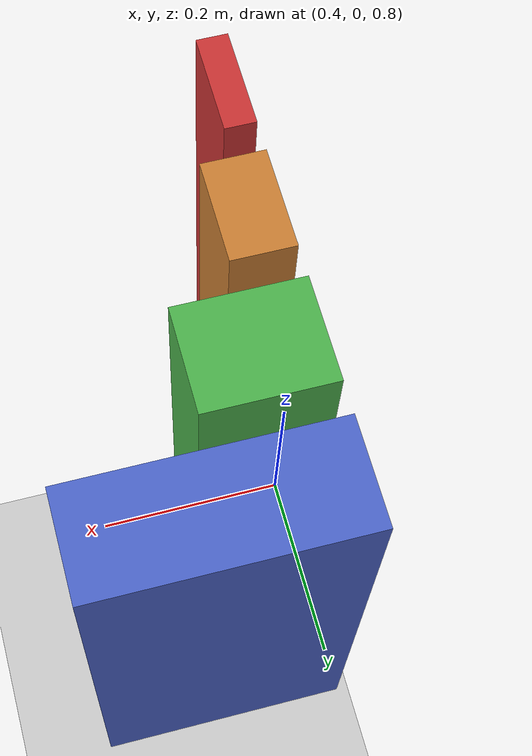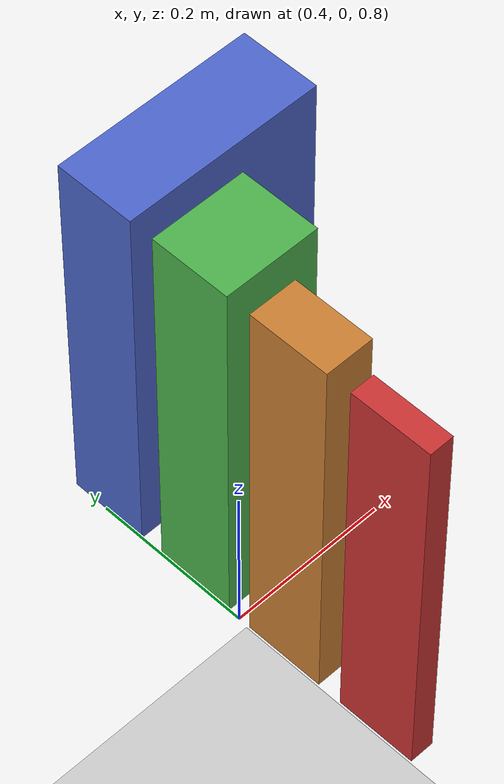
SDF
<?xml version="1.0" ?>
<sdf version="1.6">
  <world name="thickness_scene">
    <gravity>0 0 -9.8</gravity>

    <physics default="1" name="default_physics" type="dart">
      <real_time_update_rate>1000.0</real_time_update_rate>
      <bullet>
        <solver>
          <iters>50</iters>
          <min_step_size>0.0001</min_step_size>
          <sor>1.3</sor>
          <type>quick</type>
        </solver>
        <constraints>
          <contact_surface_layer>0.001</contact_surface_layer>
          <cfm>0.0</cfm>
          <erp>0.2</erp>
          <split_impulse>1</split_impulse>
          <split_impulse_penetration_threshold>-0.01</split_impulse_penetration_threshold>
        </constraints>
      </bullet>
      <max_contacts>20</max_contacts>
      <max_step_size>0.001</max_step_size>
      <real_time_factor>1.0</real_time_factor>
    </physics>

    <include>
      <uri>model://sun</uri>
    </include>
    <include>
      <uri>model://ground_plane</uri>
    </include>

    <!-- Front faces all at x = 0.40; centre = 0.40 + thickness/2. -->
    <model name="slab_003">
      <static>true</static>
      <pose>0.415 -0.195 1.05 0 0 0</pose>
      <link name="link">
        <collision name="c">
          <geometry><box><size>0.03 0.10 0.50</size></box></geometry>
        </collision>
        <visual name="v">
          <geometry><box><size>0.03 0.10 0.50</size></box></geometry>
          <material><ambient>0.8 0.2 0.2 1</ambient><diffuse>0.8 0.2 0.2 1</diffuse></material>
        </visual>
      </link>
    </model>

    <model name="slab_006">
      <static>true</static>
      <pose>0.430 -0.065 1.05 0 0 0</pose>
      <link name="link">
        <collision name="c">
          <geometry><box><size>0.06 0.10 0.50</size></box></geometry>
        </collision>
        <visual name="v">
          <geometry><box><size>0.06 0.10 0.50</size></box></geometry>
          <material><ambient>0.8 0.5 0.2 1</ambient><diffuse>0.8 0.5 0.2 1</diffuse></material>
        </visual>
      </link>
    </model>

    <model name="slab_012">
      <static>true</static>
      <pose>0.460 0.065 1.05 0 0 0</pose>
      <link name="link">
        <collision name="c">
          <geometry><box><size>0.12 0.10 0.50</size></box></geometry>
        </collision>
        <visual name="v">
          <geometry><box><size>0.12 0.10 0.50</size></box></geometry>
          <material><ambient>0.3 0.7 0.3 1</ambient><diffuse>0.3 0.7 0.3 1</diffuse></material>
        </visual>
      </link>
    </model>

    <model name="slab_025">
      <static>true</static>
      <pose>0.525 0.195 1.05 0 0 0</pose>
      <link name="link">
        <collision name="c">
          <geometry><box><size>0.25 0.10 0.50</size></box></geometry>
        </collision>
        <visual name="v">
          <geometry><box><size>0.25 0.10 0.50</size></box></geometry>
          <material><ambient>0.3 0.4 0.8 1</ambient><diffuse>0.3 0.4 0.8 1</diffuse></material>
        </visual>
      </link>
    </model>
  </world>
</sdf>
